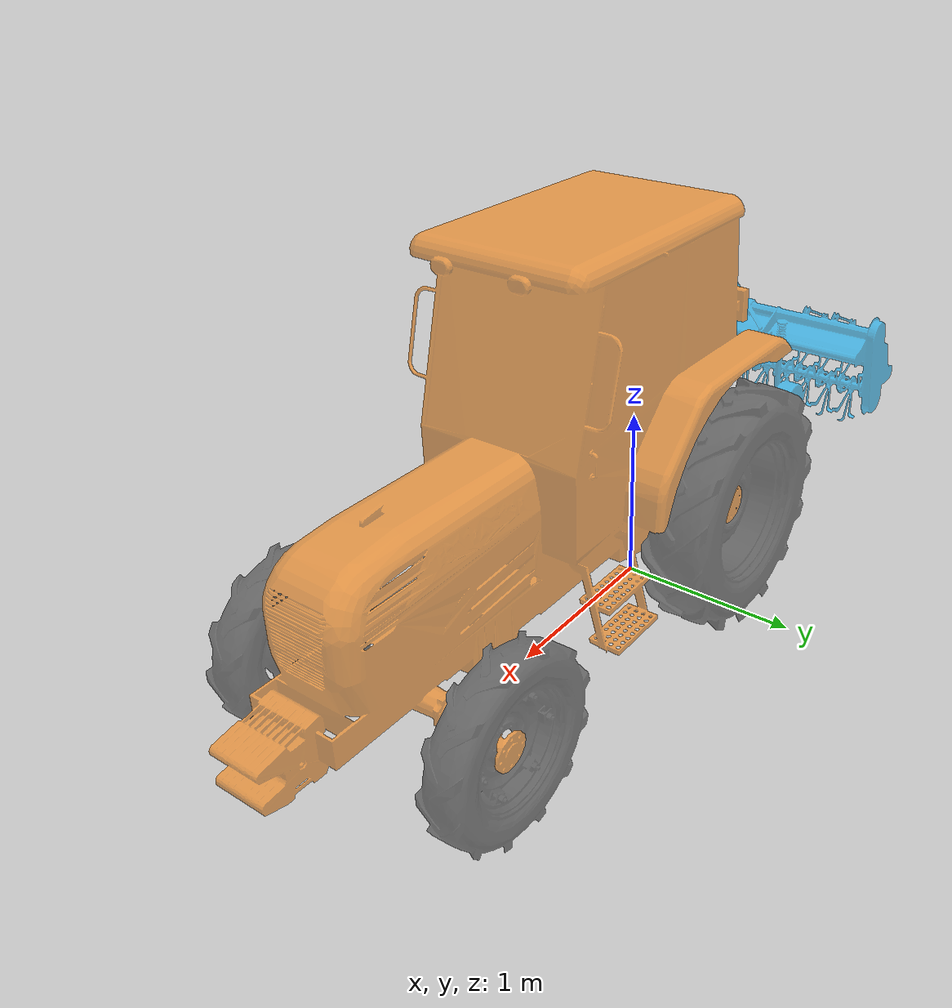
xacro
<?xml version="1.0"?>
<robot xmlns:xacro="http://www.ros.org/wiki/xacro" name="tractor_model">
  <!-- Load common macros and properties -->
  <xacro:include filename="$(find open_autonomous_tractor)/urdf/common/common.xacro" />

  <!-- Tractor model dimensions and properties -->
  <xacro:property name="wheelbase" value="1.916" /> <!-- Wheelbase: 1.916m -->
  <xacro:property name="front_tread_width" value="1.266" /> <!-- Front tread width: 1.266m -->
  <xacro:property name="rear_tread_width" value="1.213" /> <!-- Rear tread width: 1.213m -->

  <!-- Wheel sizes -->
  <xacro:property name="front_wheel_radius" value="0.455" />
  <xacro:property name="front_wheel_width" value="0.206" />

  <xacro:property name="rear_wheel_radius" value="0.655" />
  <xacro:property name="rear_wheel_width" value="0.354" />

  <!-- Tractor body size -->
  <xacro:property name="body_length" value="3.544" />
  <xacro:property name="body_width" value="1.6" />
  <xacro:property name="body_height" value="2.562" />

  <!-- base_footprint represents the center point of the robot's floor -->
  <link name="base_footprint"/>

  <!-- Connect base_footprint and base_link (rear tread center) -->
  <joint name="base_joint" type="fixed">
    <parent link="base_footprint"/>
    <child link="base_link"/>
    <!-- Since the center of the rear tread is at height rear_wheel_radius from the ground -->
    <origin xyz="0 0 ${rear_wheel_radius}" rpy="0 0 0"/>
  </joint>

  <!-- base_link represents the center of the rear tread -->
  <link name="base_link">
    <visual>
      <geometry>
        <!-- box size="${body_length} ${body_width} ${body_height}" / -->
        <mesh filename="package://open_autonomous_tractor/meshes/tractor_model/visual/body.stl" scale="1 1 1"/>
      </geometry>
      <material name="tractor_material">
        <color rgba="${orange_color}" />
      </material>
      <origin xyz="0 0 0" rpy="0 0 0" />
    </visual>
  </link>

  <!-- Wheel definitions (using macros from common.xacro) -->
  <!-- Rear wheels: base_link is at the center of the rear tread, so x=0 -->
  <xacro:wheel prefix="rear_left" radius="${rear_wheel_radius}" width="${rear_wheel_width}" mass="50" />
  <joint name="rear_left_wheel_joint" type="continuous">
    <parent link="base_link" />
    <child link="rear_left_wheel_link" />
    <!-- base_link is already at height rear_wheel_radius, so z=0 -->
    <origin xyz="0 ${rear_tread_width/2} 0" rpy="0 0 0" />
    <axis xyz="0 0 1" />
  </joint>

  <xacro:wheel prefix="rear_right" radius="${rear_wheel_radius}" width="${rear_wheel_width}" mass="50" />
  <joint name="rear_right_wheel_joint" type="continuous">
    <parent link="base_link" />
    <child link="rear_right_wheel_link" />
    <!-- base_link is already at height rear_wheel_radius, so z=0 -->
    <origin xyz="0 ${-rear_tread_width/2} 0" rpy="0 0 0" />
    <axis xyz="0 0 1" />
  </joint>

  <!-- Front wheels links and joints - connected directly to base_link -->
  <xacro:wheel prefix="front_left" radius="${front_wheel_radius}" width="${front_wheel_width}" mass="30" />
  <joint name="front_left_wheel_joint" type="revolute">
    <parent link="base_link" />
    <child link="front_left_wheel_link" />
    <origin xyz="${wheelbase} ${front_tread_width/2} ${front_wheel_radius - rear_wheel_radius}" rpy="0 0 0" />
    <axis xyz="0 0 1" />
    <limit lower="${-PI/3}" upper="${PI/3}" effort="100" velocity="1.0" />
  </joint>

  <xacro:wheel prefix="front_right" radius="${front_wheel_radius}" width="${front_wheel_width}" mass="30" />
  <joint name="front_right_wheel_joint" type="revolute">
    <parent link="base_link" />
    <child link="front_right_wheel_link" />
    <origin xyz="${wheelbase} ${-front_tread_width/2} ${front_wheel_radius - rear_wheel_radius}" rpy="0 0 0" />
    <axis xyz="0 0 1" />
    <limit lower="${-PI/3}" upper="${PI/3}" effort="100" velocity="1.0" />
  </joint>

  <!-- Implement link for the tractor model -->
  <link name="implement_link">
    <visual>
      <geometry>
        <mesh filename="package://open_autonomous_tractor/meshes/tractor_model/visual/implement.stl" scale="1 1 1"/>
      </geometry>
      <material name="implement_material">
        <color rgba="${sky_blue_color}" />
      </material>
      <origin xyz="0 0 0" rpy="0 0 0" />
    </visual>
  </link>

  <!-- Implement connection position is roughly estimated. Adjust if needed -->
  <joint name="implement_joint" type="fixed">
    <parent link="base_link" />
    <child link="implement_link" />
    <!-- Roughly set the position of the implement. Adjust as needed -->
    <origin xyz="-1 0 0" rpy="0 0 0" />
  </joint>
</robot>

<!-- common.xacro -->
<robot xmlns:xacro="http://www.ros.org/wiki/xacro">
  <!-- Common properties -->
  <xacro:property name="PI" value="3.14159265359" />

  <!-- Color definitions -->
  <xacro:property name="red_color" value="0.8 0.0 0.0 0.6" /> <!-- Red -->
  <xacro:property name="pink_color" value="1.0 0.4 0.7 0.6" /> <!-- Pink -->
  <xacro:property name="orange_color" value="1.0 0.5 0.0 0.6" /> <!-- Orange -->
  <xacro:property name="wheel_color" value="0.2 0.2 0.2 0.6" /> <!-- Black -->
  <xacro:property name="sky_blue_color" value="0.0 0.7 1.0 0.6" /> <!-- Sky blue -->

  <!-- Physical properties -->
  <xacro:property name="wheel_friction" value="1.0" />
  <xacro:property name="wheel_damping" value="0.1" />

  <!-- Inertia macro - Box inertia -->
  <xacro:macro name="box_inertia" params="mass x y z">
    <inertial>
      <mass value="${mass}" />
      <inertia ixx="${mass*(y*y+z*z)/12}" ixy="0.0" ixz="0.0"
               iyy="${mass*(x*x+z*z)/12}" iyz="0.0"
               izz="${mass*(x*x+y*y)/12}" />
    </inertial>
  </xacro:macro>

  <!-- Inertia macro - Cylinder inertia -->
  <xacro:macro name="cylinder_inertia" params="mass r h">
    <inertial>
      <mass value="${mass}" />
      <inertia ixx="${mass*(3*r*r+h*h)/12}" ixy="0.0" ixz="0.0"
               iyy="${mass*(3*r*r+h*h)/12}" iyz="0.0"
               izz="${mass*r*r/2}" />
    </inertial>
  </xacro:macro>

  <!-- Wheel macro -->
  <xacro:macro name="wheel" params="prefix radius width mass">
    <link name="${prefix}_wheel_link">
      <visual>
        <!-- Using STL mesh instead of cylinder -->
        <geometry>
          <mesh filename="package://open_autonomous_tractor/meshes/tractor_model/visual/${prefix}.stl" scale="1 1 1"/>
        </geometry>
        <material name="wheel_material">
          <color rgba="${wheel_color}" />
        </material>
        <!-- Adjust origin as needed depending on the mesh file origin -->
        <origin xyz="0 0 0" rpy="${-PI/2} 0 0" />
      </visual>
    </link>
  </xacro:macro>
</robot>
